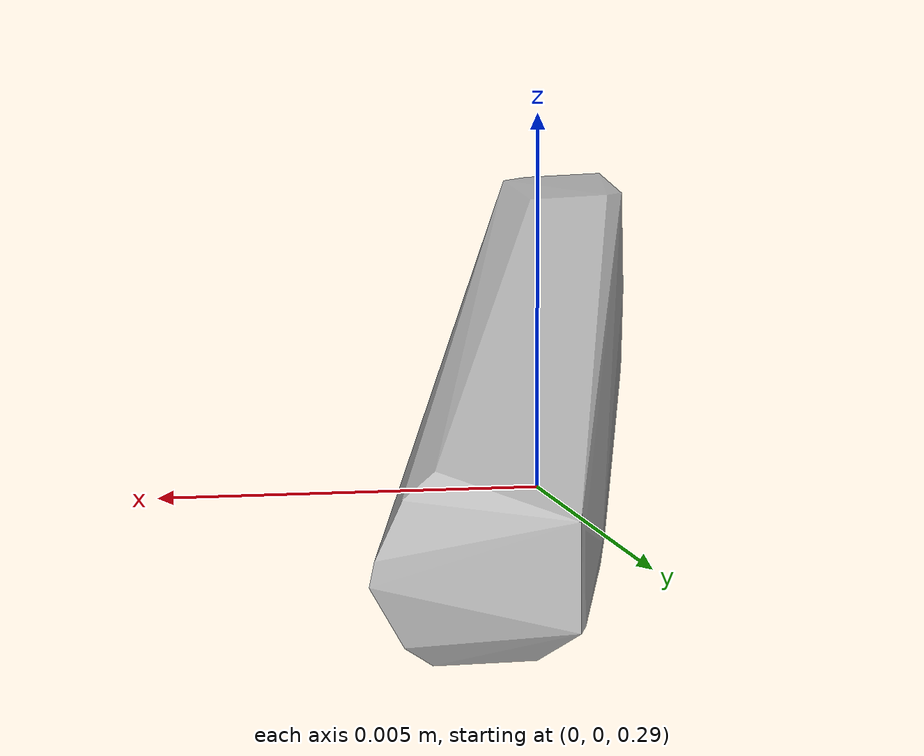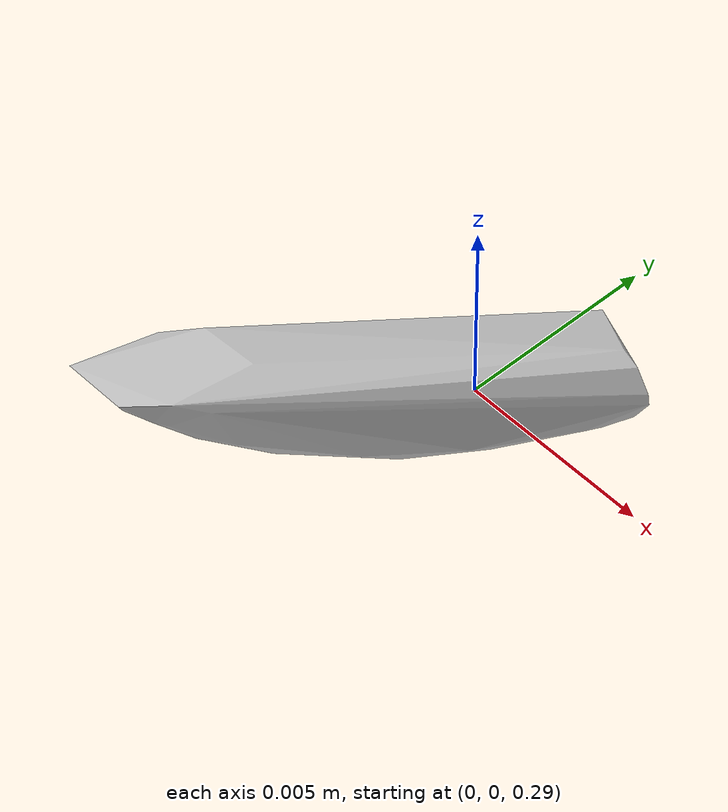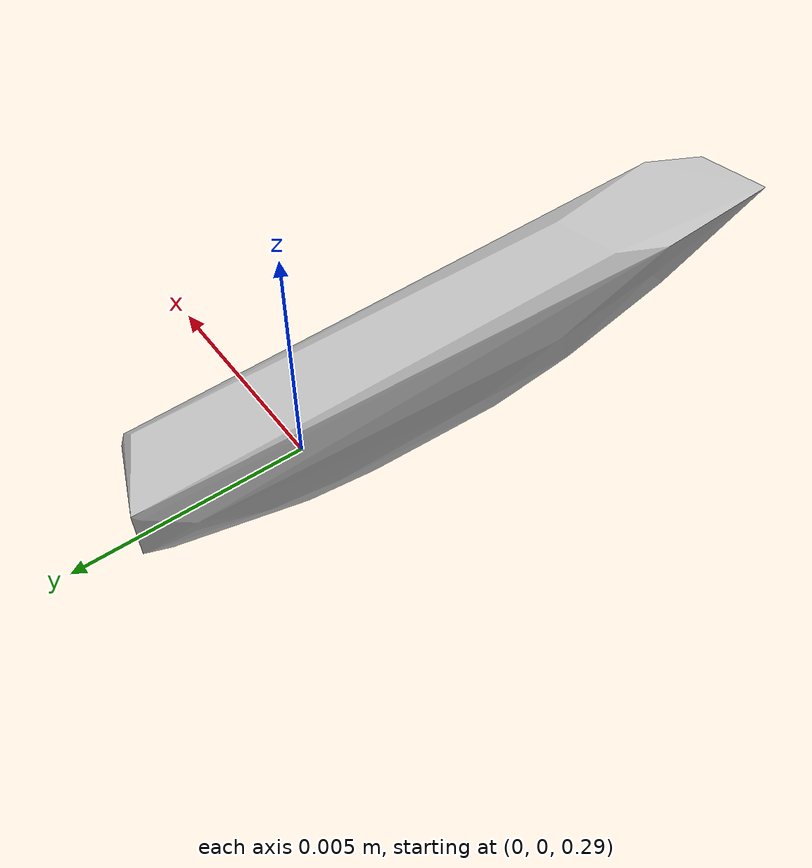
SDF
<?xml version="1.0"?>
<sdf version="1.7">
  <model name="vascular_partexport010">
    <link name="vascular_partexport010_body">
      <visual name="vascular_partexport010_visual">
        <geometry>
          <mesh>
            <uri>vascular_partexport010.obj</uri>
          </mesh>
        </geometry>
      </visual>
      <collision name="vascular_partexport010_collision">
        <geometry>
          <mesh>
            <uri>vascular_partexport010.obj</uri>
          </mesh>
        </geometry>
      </collision>
    </link>
    <frame name="vascular_partexport010_center">
      <pose relative_to="vascular_partexport010_body">0 0 0 0 0 0</pose>
    </frame>
  </model>
</sdf>
